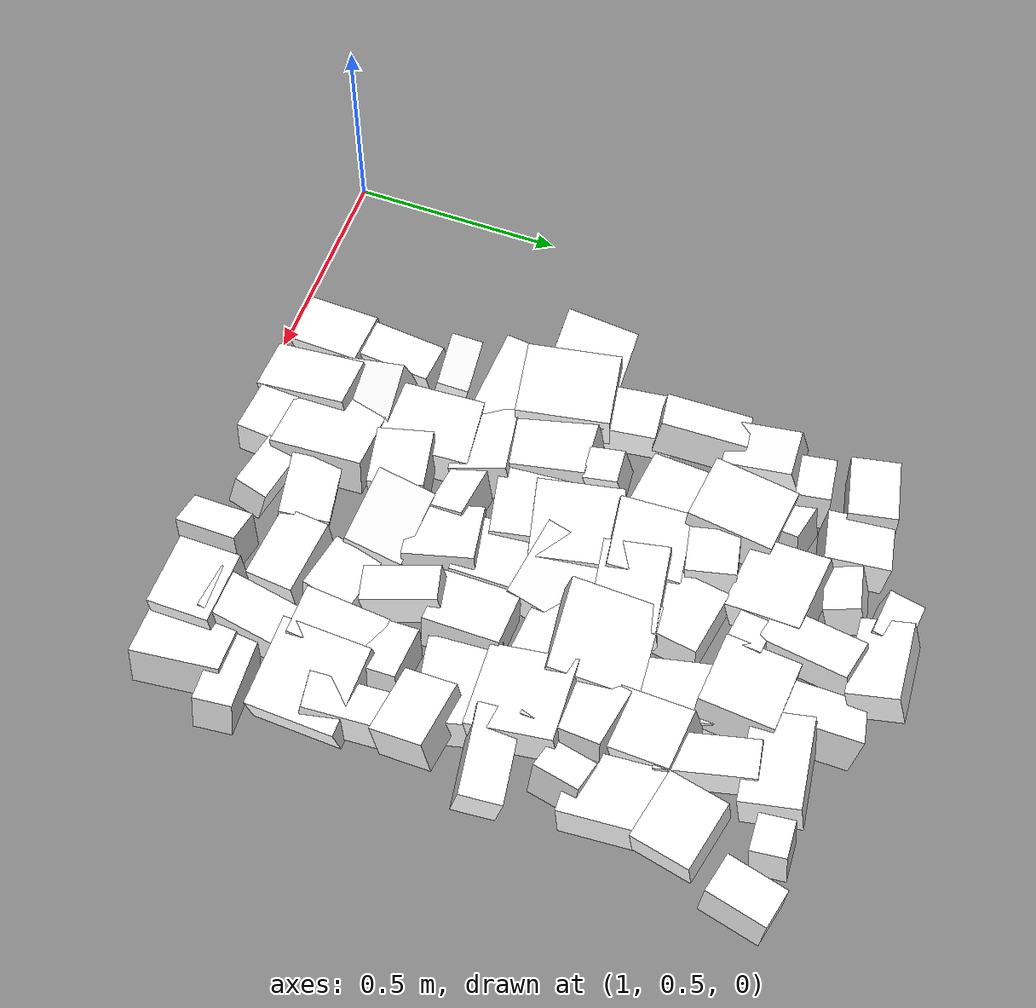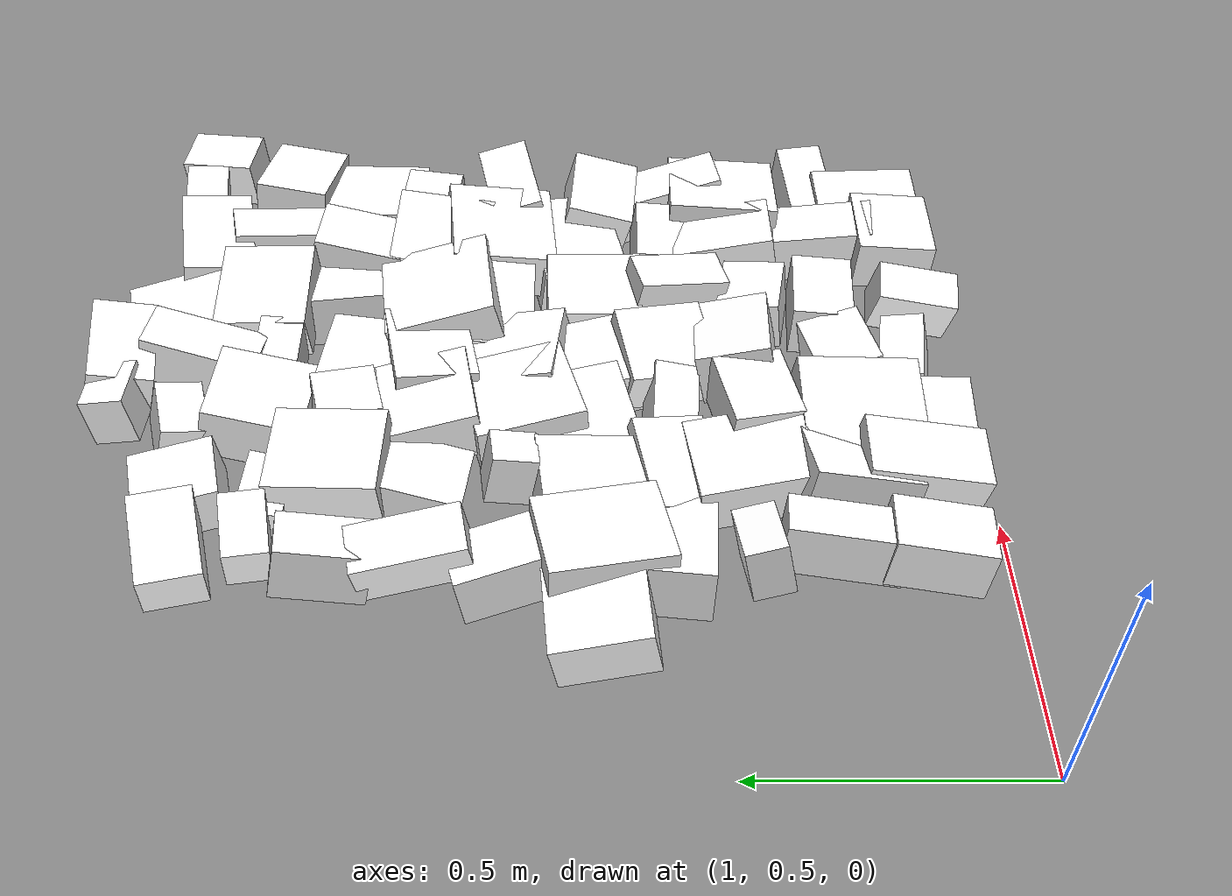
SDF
<sdf version="1.7">
 <world name="default">
  <include><uri>model://sun</uri></include>
  <model name="static_environment">
   <static>true</static>
   <link name="region_403">
    <pose>1.4482737866950006 0.6189700978827616 0.014479339176527679 0.11656298880633531 0.10131117762762315 -0.08621526186828848</pose>
    <collision name="region_403_collision">
     <geometry><box><size>0.12148463767350438 0.1757178967818004 0.1</size></box></geometry>
     <surface><friction><ode><mu>1.0</mu><mu2>1.0</mu2></ode></friction></surface>
    </collision>
    <visual name="region_403_visual">
     <geometry><box><size>0.12148463767350438 0.1757178967818004 0.1</size></box></geometry>
     <material><ambient>1.0 1.0 1.0 1.0</ambient><diffuse>1.0 1.0 1.0 1.0</diffuse></material>
    </visual>
   </link>
   <link name="region_404">
    <pose>1.6074749267041208 0.6270188114819715 0.03837378253102444 0.16250462660738674 -0.04667984909666917 -0.02434579428934286</pose>
    <collision name="region_404_collision">
     <geometry><box><size>0.12519712936590835 0.22170871185247784 0.1</size></box></geometry>
     <surface><friction><ode><mu>1.0</mu><mu2>1.0</mu2></ode></friction></surface>
    </collision>
    <visual name="region_404_visual">
     <geometry><box><size>0.12519712936590835 0.22170871185247784 0.1</size></box></geometry>
     <material><ambient>1.0 1.0 1.0 1.0</ambient><diffuse>1.0 1.0 1.0 1.0</diffuse></material>
    </visual>
   </link>
   <link name="region_405">
    <pose>1.7306538505562727 0.627755814181671 0.020962513512955312 -0.03797377672450064 -0.018425565136327038 -0.06313842558804234</pose>
    <collision name="region_405_collision">
     <geometry><box><size>0.13509474410425104 0.22427072405078377 0.1</size></box></geometry>
     <surface><friction><ode><mu>1.0</mu><mu2>1.0</mu2></ode></friction></surface>
    </collision>
    <visual name="region_405_visual">
     <geometry><box><size>0.13509474410425104 0.22427072405078377 0.1</size></box></geometry>
     <material><ambient>1.0 1.0 1.0 1.0</ambient><diffuse>1.0 1.0 1.0 1.0</diffuse></material>
    </visual>
   </link>
   <link name="region_406">
    <pose>1.87505636018391 0.613951241888517 0.03180999969164338 -0.23604610556923372 -0.0999149700880067 -0.13957373958555724</pose>
    <collision name="region_406_collision">
     <geometry><box><size>0.14482621502587664 0.08027523922062071 0.1</size></box></geometry>
     <surface><friction><ode><mu>1.0</mu><mu2>1.0</mu2></ode></friction></surface>
    </collision>
    <visual name="region_406_visual">
     <geometry><box><size>0.14482621502587664 0.08027523922062071 0.1</size></box></geometry>
     <material><ambient>1.0 1.0 1.0 1.0</ambient><diffuse>1.0 1.0 1.0 1.0</diffuse></material>
    </visual>
   </link>
   <link name="region_407">
    <pose>2.0449821794376764 0.5728931249895342 0.02862022577648047 0.15175832533868816 -0.1931991402300915 -0.1114413927874019</pose>
    <collision name="region_407_collision">
     <geometry><box><size>0.08325299900103002 0.1534869106167438 0.1</size></box></geometry>
     <surface><friction><ode><mu>1.0</mu><mu2>1.0</mu2></ode></friction></surface>
    </collision>
    <visual name="region_407_visual">
     <geometry><box><size>0.08325299900103002 0.1534869106167438 0.1</size></box></geometry>
     <material><ambient>1.0 1.0 1.0 1.0</ambient><diffuse>1.0 1.0 1.0 1.0</diffuse></material>
    </visual>
   </link>
   <link name="region_408">
    <pose>2.200393364540086 0.5976864156039573 0.04473715369639454 0.05288884656779247 0.05167780158377683 -0.02806407190436555</pose>
    <collision name="region_408_collision">
     <geometry><box><size>0.17125171375281345 0.14891059581547617 0.1</size></box></geometry>
     <surface><friction><ode><mu>1.0</mu><mu2>1.0</mu2></ode></friction></surface>
    </collision>
    <visual name="region_408_visual">
     <geometry><box><size>0.17125171375281345 0.14891059581547617 0.1</size></box></geometry>
     <material><ambient>1.0 1.0 1.0 1.0</ambient><diffuse>1.0 1.0 1.0 1.0</diffuse></material>
    </visual>
   </link>
   <link name="region_409">
    <pose>2.3325100293076115 0.6266748877293795 0.0036735021971132766 0.047576228318045255 -0.2344244645741168 0.08262871626539459</pose>
    <collision name="region_409_collision">
     <geometry><box><size>0.14700701749903353 0.20826712908445394 0.1</size></box></geometry>
     <surface><friction><ode><mu>1.0</mu><mu2>1.0</mu2></ode></friction></surface>
    </collision>
    <visual name="region_409_visual">
     <geometry><box><size>0.14700701749903353 0.20826712908445394 0.1</size></box></geometry>
     <material><ambient>1.0 1.0 1.0 1.0</ambient><diffuse>1.0 1.0 1.0 1.0</diffuse></material>
    </visual>
   </link>
   <link name="region_423">
    <pose>1.4552731890826958 0.7792853854616951 0.021433067825808894 0.06492498947557018 0.1381406671326596 -0.12009125611619303</pose>
    <collision name="region_423_collision">
     <geometry><box><size>0.09088427286351888 0.21080937999444802 0.1</size></box></geometry>
     <surface><friction><ode><mu>1.0</mu><mu2>1.0</mu2></ode></friction></surface>
    </collision>
    <visual name="region_423_visual">
     <geometry><box><size>0.09088427286351888 0.21080937999444802 0.1</size></box></geometry>
     <material><ambient>1.0 1.0 1.0 1.0</ambient><diffuse>1.0 1.0 1.0 1.0</diffuse></material>
    </visual>
   </link>
   <link name="region_424">
    <pose>1.6012783154992256 0.7454691083326531 0.02655015189021411 0.22298906133503016 0.24963683107212142 0.08546179442413071</pose>
    <collision name="region_424_collision">
     <geometry><box><size>0.1708369603893236 0.19901999627410133 0.1</size></box></geometry>
     <surface><friction><ode><mu>1.0</mu><mu2>1.0</mu2></ode></friction></surface>
    </collision>
    <visual name="region_424_visual">
     <geometry><box><size>0.1708369603893236 0.19901999627410133 0.1</size></box></geometry>
     <material><ambient>1.0 1.0 1.0 1.0</ambient><diffuse>1.0 1.0 1.0 1.0</diffuse></material>
    </visual>
   </link>
   <link name="region_425">
    <pose>1.7284935047291565 0.7215772211932071 0.03732213806120737 0.05829403702023506 -0.20039765036196355 0.010951337678578033</pose>
    <collision name="region_425_collision">
     <geometry><box><size>0.1934364205563424 0.2222381332040455 0.1</size></box></geometry>
     <surface><friction><ode><mu>1.0</mu><mu2>1.0</mu2></ode></friction></surface>
    </collision>
    <visual name="region_425_visual">
     <geometry><box><size>0.1934364205563424 0.2222381332040455 0.1</size></box></geometry>
     <material><ambient>1.0 1.0 1.0 1.0</ambient><diffuse>1.0 1.0 1.0 1.0</diffuse></material>
    </visual>
   </link>
   <link name="region_426">
    <pose>1.884906309356488 0.7308209508118164 0.029191153348755612 -0.17304069632451752 0.10586379385263428 0.17937620272601762</pose>
    <collision name="region_426_collision">
     <geometry><box><size>0.15111479722179935 0.11785395388839123 0.1</size></box></geometry>
     <surface><friction><ode><mu>1.0</mu><mu2>1.0</mu2></ode></friction></surface>
    </collision>
    <visual name="region_426_visual">
     <geometry><box><size>0.15111479722179935 0.11785395388839123 0.1</size></box></geometry>
     <material><ambient>1.0 1.0 1.0 1.0</ambient><diffuse>1.0 1.0 1.0 1.0</diffuse></material>
    </visual>
   </link>
   <link name="region_427">
    <pose>2.043821962412041 0.7507809615127345 0.017210211040239686 0.022801163499002908 0.0930583674152155 -0.1001535525032935</pose>
    <collision name="region_427_collision">
     <geometry><box><size>0.17796620561972773 0.11476944132182873 0.1</size></box></geometry>
     <surface><friction><ode><mu>1.0</mu><mu2>1.0</mu2></ode></friction></surface>
    </collision>
    <visual name="region_427_visual">
     <geometry><box><size>0.17796620561972773 0.11476944132182873 0.1</size></box></geometry>
     <material><ambient>1.0 1.0 1.0 1.0</ambient><diffuse>1.0 1.0 1.0 1.0</diffuse></material>
    </visual>
   </link>
   <link name="region_428">
    <pose>2.2165509367568443 0.7225035570373122 0.03227426847721402 -0.1859034487469569 0.023826251471153748 -0.10423827667202673</pose>
    <collision name="region_428_collision">
     <geometry><box><size>0.10730367351970604 0.19324631848978693 0.1</size></box></geometry>
     <surface><friction><ode><mu>1.0</mu><mu2>1.0</mu2></ode></friction></surface>
    </collision>
    <visual name="region_428_visual">
     <geometry><box><size>0.10730367351970604 0.19324631848978693 0.1</size></box></geometry>
     <material><ambient>1.0 1.0 1.0 1.0</ambient><diffuse>1.0 1.0 1.0 1.0</diffuse></material>
    </visual>
   </link>
   <link name="region_429">
    <pose>2.373850714681514 0.7405193487590869 0.006604265252075437 -0.021208525792619837 -0.20778109596812883 0.1201132966222232</pose>
    <collision name="region_429_collision">
     <geometry><box><size>0.19887676742959542 0.0896028557916878 0.1</size></box></geometry>
     <surface><friction><ode><mu>1.0</mu><mu2>1.0</mu2></ode></friction></surface>
    </collision>
    <visual name="region_429_visual">
     <geometry><box><size>0.19887676742959542 0.0896028557916878 0.1</size></box></geometry>
     <material><ambient>1.0 1.0 1.0 1.0</ambient><diffuse>1.0 1.0 1.0 1.0</diffuse></material>
    </visual>
   </link>
   <link name="region_443">
    <pose>1.4348332538764765 0.9197944317119837 0.02055801611473808 -0.2050427080077219 0.23736874992469142 0.07618113201598758</pose>
    <collision name="region_443_collision">
     <geometry><box><size>0.12906568352292772 0.07572940316619309 0.1</size></box></geometry>
     <surface><friction><ode><mu>1.0</mu><mu2>1.0</mu2></ode></friction></surface>
    </collision>
    <visual name="region_443_visual">
     <geometry><box><size>0.12906568352292772 0.07572940316619309 0.1</size></box></geometry>
     <material><ambient>1.0 1.0 1.0 1.0</ambient><diffuse>1.0 1.0 1.0 1.0</diffuse></material>
    </visual>
   </link>
   <link name="region_444">
    <pose>1.6259813571260588 0.9226953953332074 0.020076265614771202 -0.11052516944853741 -0.009537501666561254 0.12841041568166967</pose>
    <collision name="region_444_collision">
     <geometry><box><size>0.17342333794669912 0.21412744062600159 0.1</size></box></geometry>
     <surface><friction><ode><mu>1.0</mu><mu2>1.0</mu2></ode></friction></surface>
    </collision>
    <visual name="region_444_visual">
     <geometry><box><size>0.17342333794669912 0.21412744062600159 0.1</size></box></geometry>
     <material><ambient>1.0 1.0 1.0 1.0</ambient><diffuse>1.0 1.0 1.0 1.0</diffuse></material>
    </visual>
   </link>
   <link name="region_445">
    <pose>1.7558650998441792 0.9085297911191123 0.048926492284110765 0.060769097616112155 -0.05329978420108494 0.21741918585358727</pose>
    <collision name="region_445_collision">
     <geometry><box><size>0.15133238702472265 0.1312909782964136 0.1</size></box></geometry>
     <surface><friction><ode><mu>1.0</mu><mu2>1.0</mu2></ode></friction></surface>
    </collision>
    <visual name="region_445_visual">
     <geometry><box><size>0.15133238702472265 0.1312909782964136 0.1</size></box></geometry>
     <material><ambient>1.0 1.0 1.0 1.0</ambient><diffuse>1.0 1.0 1.0 1.0</diffuse></material>
    </visual>
   </link>
   <link name="region_446">
    <pose>1.8975710276075208 0.9299274245324783 0.04817990920831034 -0.2467401985324249 0.17297758530481622 -0.06875943304665849</pose>
    <collision name="region_446_collision">
     <geometry><box><size>0.18477311194502558 0.1395854447674497 0.1</size></box></geometry>
     <surface><friction><ode><mu>1.0</mu><mu2>1.0</mu2></ode></friction></surface>
    </collision>
    <visual name="region_446_visual">
     <geometry><box><size>0.18477311194502558 0.1395854447674497 0.1</size></box></geometry>
     <material><ambient>1.0 1.0 1.0 1.0</ambient><diffuse>1.0 1.0 1.0 1.0</diffuse></material>
    </visual>
   </link>
   <link name="region_447">
    <pose>2.056887769999161 0.8805981347662073 0.010419092529700347 -0.14185588774747127 0.03071341216380047 -0.19845633633299564</pose>
    <collision name="region_447_collision">
     <geometry><box><size>0.13459299224318186 0.11916894689664435 0.1</size></box></geometry>
     <surface><friction><ode><mu>1.0</mu><mu2>1.0</mu2></ode></friction></surface>
    </collision>
    <visual name="region_447_visual">
     <geometry><box><size>0.13459299224318186 0.11916894689664435 0.1</size></box></geometry>
     <material><ambient>1.0 1.0 1.0 1.0</ambient><diffuse>1.0 1.0 1.0 1.0</diffuse></material>
    </visual>
   </link>
   <link name="region_448">
    <pose>2.1991621039248237 0.9273440588058827 0.035727850426596784 -0.19237733280014874 -0.02606910243487015 0.013384739928217204</pose>
    <collision name="region_448_collision">
     <geometry><box><size>0.12169889653552454 0.19603223556493202 0.1</size></box></geometry>
     <surface><friction><ode><mu>1.0</mu><mu2>1.0</mu2></ode></friction></surface>
    </collision>
    <visual name="region_448_visual">
     <geometry><box><size>0.12169889653552454 0.19603223556493202 0.1</size></box></geometry>
     <material><ambient>1.0 1.0 1.0 1.0</ambient><diffuse>1.0 1.0 1.0 1.0</diffuse></material>
    </visual>
   </link>
   <link name="region_449">
    <pose>2.323197018873306 0.9245820400632065 0.034453672980976305 0.03722040202315269 0.2091633047900845 -0.04748468725875893</pose>
    <collision name="region_449_collision">
     <geometry><box><size>0.20945052945257953 0.2130379728099082 0.1</size></box></geometry>
     <surface><friction><ode><mu>1.0</mu><mu2>1.0</mu2></ode></friction></surface>
    </collision>
    <visual name="region_449_visual">
     <geometry><box><size>0.20945052945257953 0.2130379728099082 0.1</size></box></geometry>
     <material><ambient>1.0 1.0 1.0 1.0</ambient><diffuse>1.0 1.0 1.0 1.0</diffuse></material>
    </visual>
   </link>
   <link name="region_463">
    <pose>1.4354293027951255 1.0647344260305625 0.006851047883513384 0.0115759566395634 0.2125207877001566 -0.10400158927445968</pose>
    <collision name="region_463_collision">
     <geometry><box><size>0.2069920406179951 0.1269882676004928 0.1</size></box></geometry>
     <surface><friction><ode><mu>1.0</mu><mu2>1.0</mu2></ode></friction></surface>
    </collision>
    <visual name="region_463_visual">
     <geometry><box><size>0.2069920406179951 0.1269882676004928 0.1</size></box></geometry>
     <material><ambient>1.0 1.0 1.0 1.0</ambient><diffuse>1.0 1.0 1.0 1.0</diffuse></material>
    </visual>
   </link>
   <link name="region_464">
    <pose>1.620314017394691 1.0647570546649963 0.0013397644545398825 0.19705976299606254 -0.16572059085955648 0.19011705789709948</pose>
    <collision name="region_464_collision">
     <geometry><box><size>0.18762816908887603 0.13596831682542068 0.1</size></box></geometry>
     <surface><friction><ode><mu>1.0</mu><mu2>1.0</mu2></ode></friction></surface>
    </collision>
    <visual name="region_464_visual">
     <geometry><box><size>0.18762816908887603 0.13596831682542068 0.1</size></box></geometry>
     <material><ambient>1.0 1.0 1.0 1.0</ambient><diffuse>1.0 1.0 1.0 1.0</diffuse></material>
    </visual>
   </link>
   <link name="region_465">
    <pose>1.7729553883756943 1.0579592051169442 0.014489662501670103 0.18374081211482918 -0.12045966440871886 -0.08534896386449109</pose>
    <collision name="region_465_collision">
     <geometry><box><size>0.13434789679920442 0.0828606370578053 0.1</size></box></geometry>
     <surface><friction><ode><mu>1.0</mu><mu2>1.0</mu2></ode></friction></surface>
    </collision>
    <visual name="region_465_visual">
     <geometry><box><size>0.13434789679920442 0.0828606370578053 0.1</size></box></geometry>
     <material><ambient>1.0 1.0 1.0 1.0</ambient><diffuse>1.0 1.0 1.0 1.0</diffuse></material>
    </visual>
   </link>
   <link name="region_466">
    <pose>1.8982298266525373 1.0674902632498042 0.027058891876929017 0.08116830067582725 -0.21067111657317872 0.20225881072899488</pose>
    <collision name="region_466_collision">
     <geometry><box><size>0.1581103738633414 0.16528104624154386 0.1</size></box></geometry>
     <surface><friction><ode><mu>1.0</mu><mu2>1.0</mu2></ode></friction></surface>
    </collision>
    <visual name="region_466_visual">
     <geometry><box><size>0.1581103738633414 0.16528104624154386 0.1</size></box></geometry>
     <material><ambient>1.0 1.0 1.0 1.0</ambient><diffuse>1.0 1.0 1.0 1.0</diffuse></material>
    </visual>
   </link>
   <link name="region_467">
    <pose>2.0570638985055387 1.035397210446 0.04998709649525467 0.17964357227808475 -0.012119074353568737 0.2493561557276951</pose>
    <collision name="region_467_collision">
     <geometry><box><size>0.08713215249993522 0.17846111983562046 0.1</size></box></geometry>
     <surface><friction><ode><mu>1.0</mu><mu2>1.0</mu2></ode></friction></surface>
    </collision>
    <visual name="region_467_visual">
     <geometry><box><size>0.08713215249993522 0.17846111983562046 0.1</size></box></geometry>
     <material><ambient>1.0 1.0 1.0 1.0</ambient><diffuse>1.0 1.0 1.0 1.0</diffuse></material>
    </visual>
   </link>
   <link name="region_468">
    <pose>2.21130680304603 1.0358484996032125 0.022056288488288053 0.08591096817441979 -0.1285775940427349 -0.026977184998520976</pose>
    <collision name="region_468_collision">
     <geometry><box><size>0.13551258692655768 0.14023953889285304 0.1</size></box></geometry>
     <surface><friction><ode><mu>1.0</mu><mu2>1.0</mu2></ode></friction></surface>
    </collision>
    <visual name="region_468_visual">
     <geometry><box><size>0.13551258692655768 0.14023953889285304 0.1</size></box></geometry>
     <material><ambient>1.0 1.0 1.0 1.0</ambient><diffuse>1.0 1.0 1.0 1.0</diffuse></material>
    </visual>
   </link>
   <link name="region_469">
    <pose>2.3568219899281315 1.0284131150958928 0.02780903529079137 -0.21288660352097616 -0.0255078174706449 0.16757634308616487</pose>
    <collision name="region_469_collision">
     <geometry><box><size>0.08943465586379602 0.21741279211670586 0.1</size></box></geometry>
     <surface><friction><ode><mu>1.0</mu><mu2>1.0</mu2></ode></friction></surface>
    </collision>
    <visual name="region_469_visual">
     <geometry><box><size>0.08943465586379602 0.21741279211670586 0.1</size></box></geometry>
     <material><ambient>1.0 1.0 1.0 1.0</ambient><diffuse>1.0 1.0 1.0 1.0</diffuse></material>
    </visual>
   </link>
   <link name="region_482">
    <pose>1.3245946534122317 1.2033635367038735 0.013273834880020458 -0.19526976494307735 -0.0231654799691573 0.05603667854738226</pose>
    <collision name="region_482_collision">
     <geometry><box><size>0.2225055553548428 0.1757824114062242 0.1</size></box></geometry>
     <surface><friction><ode><mu>1.0</mu><mu2>1.0</mu2></ode></friction></surface>
    </collision>
    <visual name="region_482_visual">
     <geometry><box><size>0.2225055553548428 0.1757824114062242 0.1</size></box></geometry>
     <material><ambient>1.0 1.0 1.0 1.0</ambient><diffuse>1.0 1.0 1.0 1.0</diffuse></material>
    </visual>
   </link>
   <link name="region_483">
    <pose>1.4263156443285325 1.1953169624269826 0.04571165732866328 0.01082935046725314 0.0904751006052747 0.1743334826466444</pose>
    <collision name="region_483_collision">
     <geometry><box><size>0.17905476914916305 0.22179036475720626 0.1</size></box></geometry>
     <surface><friction><ode><mu>1.0</mu><mu2>1.0</mu2></ode></friction></surface>
    </collision>
    <visual name="region_483_visual">
     <geometry><box><size>0.17905476914916305 0.22179036475720626 0.1</size></box></geometry>
     <material><ambient>1.0 1.0 1.0 1.0</ambient><diffuse>1.0 1.0 1.0 1.0</diffuse></material>
    </visual>
   </link>
   <link name="region_484">
    <pose>1.5829403629585705 1.2123348583106752 0.016625824961966507 0.1514117827529342 -0.07581134830615927 0.09910449365771967</pose>
    <collision name="region_484_collision">
     <geometry><box><size>0.15123007455548812 0.19888745678978412 0.1</size></box></geometry>
     <surface><friction><ode><mu>1.0</mu><mu2>1.0</mu2></ode></friction></surface>
    </collision>
    <visual name="region_484_visual">
     <geometry><box><size>0.15123007455548812 0.19888745678978412 0.1</size></box></geometry>
     <material><ambient>1.0 1.0 1.0 1.0</ambient><diffuse>1.0 1.0 1.0 1.0</diffuse></material>
    </visual>
   </link>
   <link name="region_485">
    <pose>1.7348855564923187 1.229727080772683 0.00021382217637909152 -0.04653374775527286 -0.08500862991987052 0.22714659281219457</pose>
    <collision name="region_485_collision">
     <geometry><box><size>0.19889912990549816 0.2012782909728528 0.1</size></box></geometry>
     <surface><friction><ode><mu>1.0</mu><mu2>1.0</mu2></ode></friction></surface>
    </collision>
    <visual name="region_485_visual">
     <geometry><box><size>0.19889912990549816 0.2012782909728528 0.1</size></box></geometry>
     <material><ambient>1.0 1.0 1.0 1.0</ambient><diffuse>1.0 1.0 1.0 1.0</diffuse></material>
    </visual>
   </link>
   <link name="region_486">
    <pose>1.8917541452635191 1.1811537245658956 0.0013307533505881098 -0.1851236897035327 -0.0784101126767694 0.11376300977006387</pose>
    <collision name="region_486_collision">
     <geometry><box><size>0.15982735733272058 0.18659410562701986 0.1</size></box></geometry>
     <surface><friction><ode><mu>1.0</mu><mu2>1.0</mu2></ode></friction></surface>
    </collision>
    <visual name="region_486_visual">
     <geometry><box><size>0.15982735733272058 0.18659410562701986 0.1</size></box></geometry>
     <material><ambient>1.0 1.0 1.0 1.0</ambient><diffuse>1.0 1.0 1.0 1.0</diffuse></material>
    </visual>
   </link>
   <link name="region_487">
    <pose>2.0548245106965064 1.190457106455225 0.02436155103912191 -0.0015289687545890218 -0.1648705695767005 0.004076254598313234</pose>
    <collision name="region_487_collision">
     <geometry><box><size>0.1444036856549739 0.1801619727260887 0.1</size></box></geometry>
     <surface><friction><ode><mu>1.0</mu><mu2>1.0</mu2></ode></friction></surface>
    </collision>
    <visual name="region_487_visual">
     <geometry><box><size>0.1444036856549739 0.1801619727260887 0.1</size></box></geometry>
     <material><ambient>1.0 1.0 1.0 1.0</ambient><diffuse>1.0 1.0 1.0 1.0</diffuse></material>
    </visual>
   </link>
   <link name="region_488">
    <pose>2.2198260558603398 1.2270916891062942 0.00023491129513087962 0.08046318855049334 -0.05785262018010051 0.2019565956108581</pose>
    <collision name="region_488_collision">
     <geometry><box><size>0.21357667552902163 0.1673782652406772 0.1</size></box></geometry>
     <surface><friction><ode><mu>1.0</mu><mu2>1.0</mu2></ode></friction></surface>
    </collision>
    <visual name="region_488_visual">
     <geometry><box><size>0.21357667552902163 0.1673782652406772 0.1</size></box></geometry>
     <material><ambient>1.0 1.0 1.0 1.0</ambient><diffuse>1.0 1.0 1.0 1.0</diffuse></material>
    </visual>
   </link>
   <link name="region_489">
    <pose>2.327077685808735 1.1729965105920357 0.03586843626810019 0.2244481943095798 -0.04997588233958389 -0.10892513738889853</pose>
    <collision name="region_489_collision">
     <geometry><box><size>0.1662887871117601 0.1297723967705958 0.1</size></box></geometry>
     <surface><friction><ode><mu>1.0</mu><mu2>1.0</mu2></ode></friction></surface>
    </collision>
    <visual name="region_489_visual">
     <geometry><box><size>0.1662887871117601 0.1297723967705958 0.1</size></box></geometry>
     <material><ambient>1.0 1.0 1.0 1.0</ambient><diffuse>1.0 1.0 1.0 1.0</diffuse></material>
    </visual>
   </link>
   <link name="region_503">
    <pose>1.420430429651553 1.3629006094299698 0.0015600593636909633 -0.16636912421590216 0.10601781274675903 0.22128476554893078</pose>
    <collision name="region_503_collision">
     <geometry><box><size>0.11610383132416018 0.183813724204583 0.1</size></box></geometry>
     <surface><friction><ode><mu>1.0</mu><mu2>1.0</mu2></ode></friction></surface>
    </collision>
    <visual name="region_503_visual">
     <geometry><box><size>0.11610383132416018 0.183813724204583 0.1</size></box></geometry>
     <material><ambient>1.0 1.0 1.0 1.0</ambient><diffuse>1.0 1.0 1.0 1.0</diffuse></material>
    </visual>
   </link>
   <link name="region_504">
    <pose>1.6044252603798967 1.3534581815678872 0.04443498499662002 0.18664208295640267 0.11538221932884252 0.0894715132682537</pose>
    <collision name="region_504_collision">
     <geometry><box><size>0.08001473904331943 0.08336456639481157 0.1</size></box></geometry>
     <surface><friction><ode><mu>1.0</mu><mu2>1.0</mu2></ode></friction></surface>
    </collision>
    <visual name="region_504_visual">
     <geometry><box><size>0.08001473904331943 0.08336456639481157 0.1</size></box></geometry>
     <material><ambient>1.0 1.0 1.0 1.0</ambient><diffuse>1.0 1.0 1.0 1.0</diffuse></material>
    </visual>
   </link>
   <link name="region_505">
    <pose>1.7652834563773285 1.332289397104065 0.028435224162484164 -0.06991783616216019 0.06113519767440534 0.24008904920414847</pose>
    <collision name="region_505_collision">
     <geometry><box><size>0.19719890914208707 0.20212952201314374 0.1</size></box></geometry>
     <surface><friction><ode><mu>1.0</mu><mu2>1.0</mu2></ode></friction></surface>
    </collision>
    <visual name="region_505_visual">
     <geometry><box><size>0.19719890914208707 0.20212952201314374 0.1</size></box></geometry>
     <material><ambient>1.0 1.0 1.0 1.0</ambient><diffuse>1.0 1.0 1.0 1.0</diffuse></material>
    </visual>
   </link>
   <link name="region_506">
    <pose>1.8924508925633265 1.355103425348375 0.006590034187369054 -0.24977769082213364 0.10374628765505067 -0.15351258419824942</pose>
    <collision name="region_506_collision">
     <geometry><box><size>0.19487789782791065 0.21413746942554235 0.1</size></box></geometry>
     <surface><friction><ode><mu>1.0</mu><mu2>1.0</mu2></ode></friction></surface>
    </collision>
    <visual name="region_506_visual">
     <geometry><box><size>0.19487789782791065 0.21413746942554235 0.1</size></box></geometry>
     <material><ambient>1.0 1.0 1.0 1.0</ambient><diffuse>1.0 1.0 1.0 1.0</diffuse></material>
    </visual>
   </link>
   <link name="region_507">
    <pose>2.0288320017101915 1.3765633116089 0.009546138206991895 0.1981867619593542 -0.17773882641565597 -0.030813552106892128</pose>
    <collision name="region_507_collision">
     <geometry><box><size>0.2105464834773001 0.12293951116570014 0.1</size></box></geometry>
     <surface><friction><ode><mu>1.0</mu><mu2>1.0</mu2></ode></friction></surface>
    </collision>
    <visual name="region_507_visual">
     <geometry><box><size>0.2105464834773001 0.12293951116570014 0.1</size></box></geometry>
     <material><ambient>1.0 1.0 1.0 1.0</ambient><diffuse>1.0 1.0 1.0 1.0</diffuse></material>
    </visual>
   </link>
   <link name="region_508">
    <pose>2.2126277073723095 1.3749337073074954 0.03975718712844853 0.15290907565325723 -0.028301799573561826 0.06295016304564183</pose>
    <collision name="region_508_collision">
     <geometry><box><size>0.20428175501087323 0.20309684080417825 0.1</size></box></geometry>
     <surface><friction><ode><mu>1.0</mu><mu2>1.0</mu2></ode></friction></surface>
    </collision>
    <visual name="region_508_visual">
     <geometry><box><size>0.20428175501087323 0.20309684080417825 0.1</size></box></geometry>
     <material><ambient>1.0 1.0 1.0 1.0</ambient><diffuse>1.0 1.0 1.0 1.0</diffuse></material>
    </visual>
   </link>
   <link name="region_509">
    <pose>2.364944452165042 1.3443240389585953 0.02859137108272432 -0.20712045102571291 0.05998300966622022 0.16024643880196343</pose>
    <collision name="region_509_collision">
     <geometry><box><size>0.21483792969966023 0.09951525615182691 0.1</size></box></geometry>
     <surface><friction><ode><mu>1.0</mu><mu2>1.0</mu2></ode></friction></surface>
    </collision>
    <visual name="region_509_visual">
     <geometry><box><size>0.21483792969966023 0.09951525615182691 0.1</size></box></geometry>
     <material><ambient>1.0 1.0 1.0 1.0</ambient><diffuse>1.0 1.0 1.0 1.0</diffuse></material>
    </visual>
   </link>
   <link name="region_523">
    <pose>1.4214435448716038 1.521353555269258 0.03875121101358393 -0.16643441948813414 -0.15413344608529578 0.1579717331470461</pose>
    <collision name="region_523_collision">
     <geometry><box><size>0.09366416991348124 0.20378697012074395 0.1</size></box></geometry>
     <surface><friction><ode><mu>1.0</mu><mu2>1.0</mu2></ode></friction></surface>
    </collision>
    <visual name="region_523_visual">
     <geometry><box><size>0.09366416991348124 0.20378697012074395 0.1</size></box></geometry>
     <material><ambient>1.0 1.0 1.0 1.0</ambient><diffuse>1.0 1.0 1.0 1.0</diffuse></material>
    </visual>
   </link>
   <link name="region_524">
    <pose>1.5926581584904782 1.5098975257999845 0.0005205892888865915 0.18413411193740115 0.13133023097581853 -0.14300306444034644</pose>
    <collision name="region_524_collision">
     <geometry><box><size>0.14825705602805925 0.15150684805577194 0.1</size></box></geometry>
     <surface><friction><ode><mu>1.0</mu><mu2>1.0</mu2></ode></friction></surface>
    </collision>
    <visual name="region_524_visual">
     <geometry><box><size>0.14825705602805925 0.15150684805577194 0.1</size></box></geometry>
     <material><ambient>1.0 1.0 1.0 1.0</ambient><diffuse>1.0 1.0 1.0 1.0</diffuse></material>
    </visual>
   </link>
   <link name="region_525">
    <pose>1.7548638980254752 1.4969335552121215 0.03293696124854731 -0.17419196022391947 0.016974017752795112 0.1487578594799046</pose>
    <collision name="region_525_collision">
     <geometry><box><size>0.1787872380026846 0.16993174513375917 0.1</size></box></geometry>
     <surface><friction><ode><mu>1.0</mu><mu2>1.0</mu2></ode></friction></surface>
    </collision>
    <visual name="region_525_visual">
     <geometry><box><size>0.1787872380026846 0.16993174513375917 0.1</size></box></geometry>
     <material><ambient>1.0 1.0 1.0 1.0</ambient><diffuse>1.0 1.0 1.0 1.0</diffuse></material>
    </visual>
   </link>
   <link name="region_526">
    <pose>1.8772266045581132 1.5028713591520837 0.03306022029891523 0.07985708676963998 0.11889525013622187 0.15932695020886473</pose>
    <collision name="region_526_collision">
     <geometry><box><size>0.20914142681799403 0.15219455647485614 0.1</size></box></geometry>
     <surface><friction><ode><mu>1.0</mu><mu2>1.0</mu2></ode></friction></surface>
    </collision>
    <visual name="region_526_visual">
     <geometry><box><size>0.20914142681799403 0.15219455647485614 0.1</size></box></geometry>
     <material><ambient>1.0 1.0 1.0 1.0</ambient><diffuse>1.0 1.0 1.0 1.0</diffuse></material>
    </visual>
   </link>
   <link name="region_527">
    <pose>2.0256650392176034 1.4820130990353655 0.04602629320669693 -0.2405612050189324 0.07493299263441427 0.08300694818457793</pose>
    <collision name="region_527_collision">
     <geometry><box><size>0.22155990457814648 0.2110941735947492 0.1</size></box></geometry>
     <surface><friction><ode><mu>1.0</mu><mu2>1.0</mu2></ode></friction></surface>
    </collision>
    <visual name="region_527_visual">
     <geometry><box><size>0.22155990457814648 0.2110941735947492 0.1</size></box></geometry>
     <material><ambient>1.0 1.0 1.0 1.0</ambient><diffuse>1.0 1.0 1.0 1.0</diffuse></material>
    </visual>
   </link>
   <link name="region_528">
    <pose>2.2052062072511136 1.490024965697169 0.036953698729334045 0.09498438012934918 -0.2211343357453654 -0.12184831516168149</pose>
    <collision name="region_528_collision">
     <geometry><box><size>0.16613577178932437 0.18793919129499198 0.1</size></box></geometry>
     <surface><friction><ode><mu>1.0</mu><mu2>1.0</mu2></ode></friction></surface>
    </collision>
    <visual name="region_528_visual">
     <geometry><box><size>0.16613577178932437 0.18793919129499198 0.1</size></box></geometry>
     <material><ambient>1.0 1.0 1.0 1.0</ambient><diffuse>1.0 1.0 1.0 1.0</diffuse></material>
    </visual>
   </link>
   <link name="region_529">
    <pose>2.3442757482325227 1.5081848652091003 0.02597552395321607 -0.022850039672724476 -0.21872230571334383 -0.1895259023768981</pose>
    <collision name="region_529_collision">
     <geometry><box><size>0.08257557329714259 0.11113737238680219 0.1</size></box></geometry>
     <surface><friction><ode><mu>1.0</mu><mu2>1.0</mu2></ode></friction></surface>
    </collision>
    <visual name="region_529_visual">
     <geometry><box><size>0.08257557329714259 0.11113737238680219 0.1</size></box></geometry>
     <material><ambient>1.0 1.0 1.0 1.0</ambient><diffuse>1.0 1.0 1.0 1.0</diffuse></material>
    </visual>
   </link>
   <link name="region_543">
    <pose>1.420219160417811 1.6744120658033812 0.024498320417437592 0.18506785968185613 0.19300738297912629 0.06327566926879008</pose>
    <collision name="region_543_collision">
     <geometry><box><size>0.10750885270128696 0.16651616020808907 0.1</size></box></geometry>
     <surface><friction><ode><mu>1.0</mu><mu2>1.0</mu2></ode></friction></surface>
    </collision>
    <visual name="region_543_visual">
     <geometry><box><size>0.10750885270128696 0.16651616020808907 0.1</size></box></geometry>
     <material><ambient>1.0 1.0 1.0 1.0</ambient><diffuse>1.0 1.0 1.0 1.0</diffuse></material>
    </visual>
   </link>
   <link name="region_544">
    <pose>1.6075678899212558 1.670800724884054 0.0496079806252648 -0.07311969972214782 -0.0875729615630787 -0.08504246133870724</pose>
    <collision name="region_544_collision">
     <geometry><box><size>0.17155182428870538 0.20281812778706174 0.1</size></box></geometry>
     <surface><friction><ode><mu>1.0</mu><mu2>1.0</mu2></ode></friction></surface>
    </collision>
    <visual name="region_544_visual">
     <geometry><box><size>0.17155182428870538 0.20281812778706174 0.1</size></box></geometry>
     <material><ambient>1.0 1.0 1.0 1.0</ambient><diffuse>1.0 1.0 1.0 1.0</diffuse></material>
    </visual>
   </link>
   <link name="region_545">
    <pose>1.7418750629160402 1.6489709648094566 0.0461447525014356 0.0355235897543576 0.012708381295239102 0.21286678569065937</pose>
    <collision name="region_545_collision">
     <geometry><box><size>0.11167313632987634 0.11646361485092716 0.1</size></box></geometry>
     <surface><friction><ode><mu>1.0</mu><mu2>1.0</mu2></ode></friction></surface>
    </collision>
    <visual name="region_545_visual">
     <geometry><box><size>0.11167313632987634 0.11646361485092716 0.1</size></box></geometry>
     <material><ambient>1.0 1.0 1.0 1.0</ambient><diffuse>1.0 1.0 1.0 1.0</diffuse></material>
    </visual>
   </link>
   <link name="region_546">
    <pose>1.8866672087805338 1.629011989764221 0.010892389671513736 0.006784271642801154 0.006025194472600748 -0.15848772861422122</pose>
    <collision name="region_546_collision">
     <geometry><box><size>0.16446557801859527 0.14272536299121175 0.1</size></box></geometry>
     <surface><friction><ode><mu>1.0</mu><mu2>1.0</mu2></ode></friction></surface>
    </collision>
    <visual name="region_546_visual">
     <geometry><box><size>0.16446557801859527 0.14272536299121175 0.1</size></box></geometry>
     <material><ambient>1.0 1.0 1.0 1.0</ambient><diffuse>1.0 1.0 1.0 1.0</diffuse></material>
    </visual>
   </link>
   <link name="region_547">
    <pose>2.070119939407072 1.6665996759511827 0.005954800636162045 0.06504248751070002 0.18845013867110239 0.20231104552274864</pose>
    <collision name="region_547_collision">
     <geometry><box><size>0.13307413932261364 0.19986395768187556 0.1</size></box></geometry>
     <surface><friction><ode><mu>1.0</mu><mu2>1.0</mu2></ode></friction></surface>
    </collision>
    <visual name="region_547_visual">
     <geometry><box><size>0.13307413932261364 0.19986395768187556 0.1</size></box></geometry>
     <material><ambient>1.0 1.0 1.0 1.0</ambient><diffuse>1.0 1.0 1.0 1.0</diffuse></material>
    </visual>
   </link>
   <link name="region_548">
    <pose>2.1871000256822075 1.638183126640972 0.02759493737990461 0.1878498009879035 0.14357269516973675 -0.088165490646058</pose>
    <collision name="region_548_collision">
     <geometry><box><size>0.14092712411985148 0.2043946631770028 0.1</size></box></geometry>
     <surface><friction><ode><mu>1.0</mu><mu2>1.0</mu2></ode></friction></surface>
    </collision>
    <visual name="region_548_visual">
     <geometry><box><size>0.14092712411985148 0.2043946631770028 0.1</size></box></geometry>
     <material><ambient>1.0 1.0 1.0 1.0</ambient><diffuse>1.0 1.0 1.0 1.0</diffuse></material>
    </visual>
   </link>
   <link name="region_549">
    <pose>2.3485522486576613 1.6290135766117744 0.006801684279226856 0.06569982079071063 -0.00118522118580916 0.04561426283207659</pose>
    <collision name="region_549_collision">
     <geometry><box><size>0.15432472128174257 0.2133753842760531 0.1</size></box></geometry>
     <surface><friction><ode><mu>1.0</mu><mu2>1.0</mu2></ode></friction></surface>
    </collision>
    <visual name="region_549_visual">
     <geometry><box><size>0.15432472128174257 0.2133753842760531 0.1</size></box></geometry>
     <material><ambient>1.0 1.0 1.0 1.0</ambient><diffuse>1.0 1.0 1.0 1.0</diffuse></material>
    </visual>
   </link>
   <link name="region_563">
    <pose>1.470834476632335 1.8070938800921543 0.019147465104444195 0.00885008480408167 -0.18536123305020663 0.14578268095955071</pose>
    <collision name="region_563_collision">
     <geometry><box><size>0.12504145602461889 0.08160128611318312 0.1</size></box></geometry>
     <surface><friction><ode><mu>1.0</mu><mu2>1.0</mu2></ode></friction></surface>
    </collision>
    <visual name="region_563_visual">
     <geometry><box><size>0.12504145602461889 0.08160128611318312 0.1</size></box></geometry>
     <material><ambient>1.0 1.0 1.0 1.0</ambient><diffuse>1.0 1.0 1.0 1.0</diffuse></material>
    </visual>
   </link>
   <link name="region_564">
    <pose>1.5764199033159558 1.785515573589024 0.000645717721513861 0.1490270257808678 -0.20587495526984667 -0.1744970390183711</pose>
    <collision name="region_564_collision">
     <geometry><box><size>0.11654885732882905 0.08407692260042217 0.1</size></box></geometry>
     <surface><friction><ode><mu>1.0</mu><mu2>1.0</mu2></ode></friction></surface>
    </collision>
    <visual name="region_564_visual">
     <geometry><box><size>0.11654885732882905 0.08407692260042217 0.1</size></box></geometry>
     <material><ambient>1.0 1.0 1.0 1.0</ambient><diffuse>1.0 1.0 1.0 1.0</diffuse></material>
    </visual>
   </link>
   <link name="region_565">
    <pose>1.7580133660886412 1.8125248737656743 0.03423905116198225 0.18206268454672336 0.0822056442808955 -0.0977909686327395</pose>
    <collision name="region_565_collision">
     <geometry><box><size>0.18313343105108731 0.18120486192448076 0.1</size></box></geometry>
     <surface><friction><ode><mu>1.0</mu><mu2>1.0</mu2></ode></friction></surface>
    </collision>
    <visual name="region_565_visual">
     <geometry><box><size>0.18313343105108731 0.18120486192448076 0.1</size></box></geometry>
     <material><ambient>1.0 1.0 1.0 1.0</ambient><diffuse>1.0 1.0 1.0 1.0</diffuse></material>
    </visual>
   </link>
   <link name="region_566">
    <pose>1.8947946735420116 1.7852894287306547 0.024734446250204125 0.022126066735518535 -0.2375696023240681 -0.09467219722967285</pose>
    <collision name="region_566_collision">
     <geometry><box><size>0.12228054918479558 0.08260138469513424 0.1</size></box></geometry>
     <surface><friction><ode><mu>1.0</mu><mu2>1.0</mu2></ode></friction></surface>
    </collision>
    <visual name="region_566_visual">
     <geometry><box><size>0.12228054918479558 0.08260138469513424 0.1</size></box></geometry>
     <material><ambient>1.0 1.0 1.0 1.0</ambient><diffuse>1.0 1.0 1.0 1.0</diffuse></material>
    </visual>
   </link>
   <link name="region_567">
    <pose>2.0313298965825624 1.8185019034291723 0.0477783447086931 -0.05831778260220705 -0.1527083785163787 -0.04406779079455969</pose>
    <collision name="region_567_collision">
     <geometry><box><size>0.18710878250868135 0.17564816586291176 0.1</size></box></geometry>
     <surface><friction><ode><mu>1.0</mu><mu2>1.0</mu2></ode></friction></surface>
    </collision>
    <visual name="region_567_visual">
     <geometry><box><size>0.18710878250868135 0.17564816586291176 0.1</size></box></geometry>
     <material><ambient>1.0 1.0 1.0 1.0</ambient><diffuse>1.0 1.0 1.0 1.0</diffuse></material>
    </visual>
   </link>
   <link name="region_568">
    <pose>2.2101977675218674 1.7934099019556689 0.03828318845226566 0.1355822239599494 0.05921705157188084 0.18294247531352448</pose>
    <collision name="region_568_collision">
     <geometry><box><size>0.09002754263251588 0.2241914198070922 0.1</size></box></geometry>
     <surface><friction><ode><mu>1.0</mu><mu2>1.0</mu2></ode></friction></surface>
    </collision>
    <visual name="region_568_visual">
     <geometry><box><size>0.09002754263251588 0.2241914198070922 0.1</size></box></geometry>
     <material><ambient>1.0 1.0 1.0 1.0</ambient><diffuse>1.0 1.0 1.0 1.0</diffuse></material>
    </visual>
   </link>
   <link name="region_569">
    <pose>2.371080861576626 1.7808802217539839 0.040421346544319725 0.02616927684513043 0.1440281311971532 -0.2196464544126946</pose>
    <collision name="region_569_collision">
     <geometry><box><size>0.16461831801063612 0.14407062861919936 0.1</size></box></geometry>
     <surface><friction><ode><mu>1.0</mu><mu2>1.0</mu2></ode></friction></surface>
    </collision>
    <visual name="region_569_visual">
     <geometry><box><size>0.16461831801063612 0.14407062861919936 0.1</size></box></geometry>
     <material><ambient>1.0 1.0 1.0 1.0</ambient><diffuse>1.0 1.0 1.0 1.0</diffuse></material>
    </visual>
   </link>
   <link name="region_583">
    <pose>1.4497959124082325 1.9386310596315894 0.014815486374674565 -0.015609239466161495 -0.18151698324835086 0.2108934352738817</pose>
    <collision name="region_583_collision">
     <geometry><box><size>0.17441914561251268 0.11451447982364635 0.1</size></box></geometry>
     <surface><friction><ode><mu>1.0</mu><mu2>1.0</mu2></ode></friction></surface>
    </collision>
    <visual name="region_583_visual">
     <geometry><box><size>0.17441914561251268 0.11451447982364635 0.1</size></box></geometry>
     <material><ambient>1.0 1.0 1.0 1.0</ambient><diffuse>1.0 1.0 1.0 1.0</diffuse></material>
    </visual>
   </link>
   <link name="region_584">
    <pose>1.5848592898612597 1.9374213593630607 0.008020620353955888 -0.13772174683264793 -0.044711736757814924 0.19872276773681108</pose>
    <collision name="region_584_collision">
     <geometry><box><size>0.12715453265956467 0.1544727440471793 0.1</size></box></geometry>
     <surface><friction><ode><mu>1.0</mu><mu2>1.0</mu2></ode></friction></surface>
    </collision>
    <visual name="region_584_visual">
     <geometry><box><size>0.12715453265956467 0.1544727440471793 0.1</size></box></geometry>
     <material><ambient>1.0 1.0 1.0 1.0</ambient><diffuse>1.0 1.0 1.0 1.0</diffuse></material>
    </visual>
   </link>
   <link name="region_585">
    <pose>1.7248809877863063 1.9545967797511206 0.02811567356476102 0.22958429907304928 -0.09350274279784093 0.22542782333192735</pose>
    <collision name="region_585_collision">
     <geometry><box><size>0.11524414401918215 0.08545538111408923 0.1</size></box></geometry>
     <surface><friction><ode><mu>1.0</mu><mu2>1.0</mu2></ode></friction></surface>
    </collision>
    <visual name="region_585_visual">
     <geometry><box><size>0.11524414401918215 0.08545538111408923 0.1</size></box></geometry>
     <material><ambient>1.0 1.0 1.0 1.0</ambient><diffuse>1.0 1.0 1.0 1.0</diffuse></material>
    </visual>
   </link>
   <link name="region_586">
    <pose>1.8817621853513171 1.9264049542560615 0.04520568136542354 0.15127968239389078 0.02976128457810867 -0.21318352882238562</pose>
    <collision name="region_586_collision">
     <geometry><box><size>0.09658302095518441 0.21747877452751407 0.1</size></box></geometry>
     <surface><friction><ode><mu>1.0</mu><mu2>1.0</mu2></ode></friction></surface>
    </collision>
    <visual name="region_586_visual">
     <geometry><box><size>0.09658302095518441 0.21747877452751407 0.1</size></box></geometry>
     <material><ambient>1.0 1.0 1.0 1.0</ambient><diffuse>1.0 1.0 1.0 1.0</diffuse></material>
    </visual>
   </link>
   <link name="region_587">
    <pose>2.028969275278259 1.97622405599743 0.01137225940489961 -0.24034881687793097 -0.2488361246988015 0.18506874566665943</pose>
    <collision name="region_587_collision">
     <geometry><box><size>0.11567577102510876 0.1964156399216283 0.1</size></box></geometry>
     <surface><friction><ode><mu>1.0</mu><mu2>1.0</mu2></ode></friction></surface>
    </collision>
    <visual name="region_587_visual">
     <geometry><box><size>0.11567577102510876 0.1964156399216283 0.1</size></box></geometry>
     <material><ambient>1.0 1.0 1.0 1.0</ambient><diffuse>1.0 1.0 1.0 1.0</diffuse></material>
    </visual>
   </link>
   <link name="region_588">
    <pose>2.177213566732415 1.9338344032038455 0.046314824524297915 0.1276474374725668 0.00630674946339399 0.14876925278825237</pose>
    <collision name="region_588_collision">
     <geometry><box><size>0.21753978937258397 0.13750344757772248 0.1</size></box></geometry>
     <surface><friction><ode><mu>1.0</mu><mu2>1.0</mu2></ode></friction></surface>
    </collision>
    <visual name="region_588_visual">
     <geometry><box><size>0.21753978937258397 0.13750344757772248 0.1</size></box></geometry>
     <material><ambient>1.0 1.0 1.0 1.0</ambient><diffuse>1.0 1.0 1.0 1.0</diffuse></material>
    </visual>
   </link>
   <link name="region_589">
    <pose>2.3464338283820005 1.9747045878824259 0.0355915874041667 0.0859678668780694 -0.07803683243032605 0.06991255788186979</pose>
    <collision name="region_589_collision">
     <geometry><box><size>0.09232715607775574 0.08180664449967569 0.1</size></box></geometry>
     <surface><friction><ode><mu>1.0</mu><mu2>1.0</mu2></ode></friction></surface>
    </collision>
    <visual name="region_589_visual">
     <geometry><box><size>0.09232715607775574 0.08180664449967569 0.1</size></box></geometry>
     <material><ambient>1.0 1.0 1.0 1.0</ambient><diffuse>1.0 1.0 1.0 1.0</diffuse></material>
    </visual>
   </link>
   <link name="region_590">
    <pose>2.470067132331347 1.9509416285526608 0.015865532804677274 -0.08049755297903921 -0.05061615037986461 -0.20156785955832385</pose>
    <collision name="region_590_collision">
     <geometry><box><size>0.09785876449965346 0.1464472158214041 0.1</size></box></geometry>
     <surface><friction><ode><mu>1.0</mu><mu2>1.0</mu2></ode></friction></surface>
    </collision>
    <visual name="region_590_visual">
     <geometry><box><size>0.09785876449965346 0.1464472158214041 0.1</size></box></geometry>
     <material><ambient>1.0 1.0 1.0 1.0</ambient><diffuse>1.0 1.0 1.0 1.0</diffuse></material>
    </visual>
   </link>
   <link name="region_605">
    <pose>1.763653224880041 2.070740007551215 0.045808689834039344 -0.19591417069870531 0.05577122309593435 -0.09536739150740281</pose>
    <collision name="region_605_collision">
     <geometry><box><size>0.10829800709782718 0.0844096225556626 0.1</size></box></geometry>
     <surface><friction><ode><mu>1.0</mu><mu2>1.0</mu2></ode></friction></surface>
    </collision>
    <visual name="region_605_visual">
     <geometry><box><size>0.10829800709782718 0.0844096225556626 0.1</size></box></geometry>
     <material><ambient>1.0 1.0 1.0 1.0</ambient><diffuse>1.0 1.0 1.0 1.0</diffuse></material>
    </visual>
   </link>
   <link name="region_606">
    <pose>1.8748239724487177 2.079071764452655 0.04924603873862226 0.23719233984005755 -0.02905221224952148 0.09106887290034454</pose>
    <collision name="region_606_collision">
     <geometry><box><size>0.1937139663212808 0.12107750887369216 0.1</size></box></geometry>
     <surface><friction><ode><mu>1.0</mu><mu2>1.0</mu2></ode></friction></surface>
    </collision>
    <visual name="region_606_visual">
     <geometry><box><size>0.1937139663212808 0.12107750887369216 0.1</size></box></geometry>
     <material><ambient>1.0 1.0 1.0 1.0</ambient><diffuse>1.0 1.0 1.0 1.0</diffuse></material>
    </visual>
   </link>
  </model>
 </world>
</sdf>
